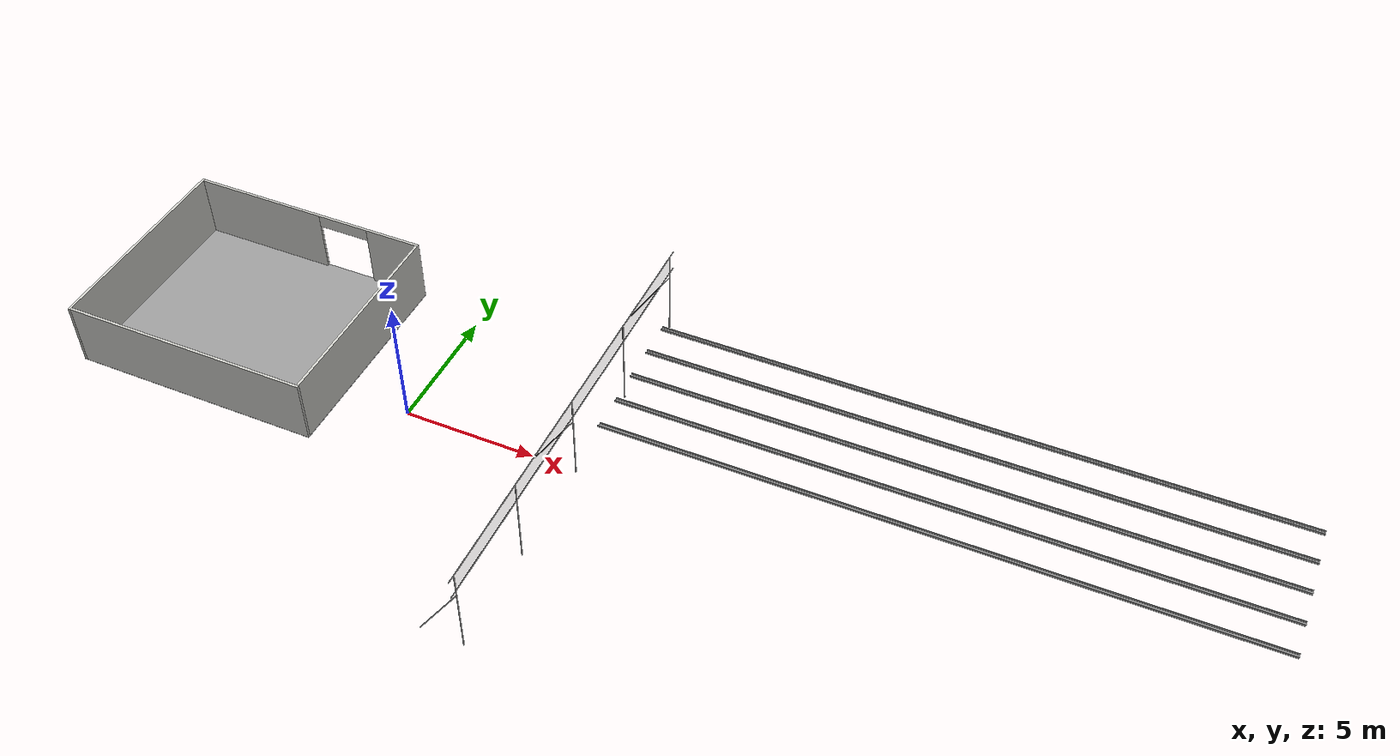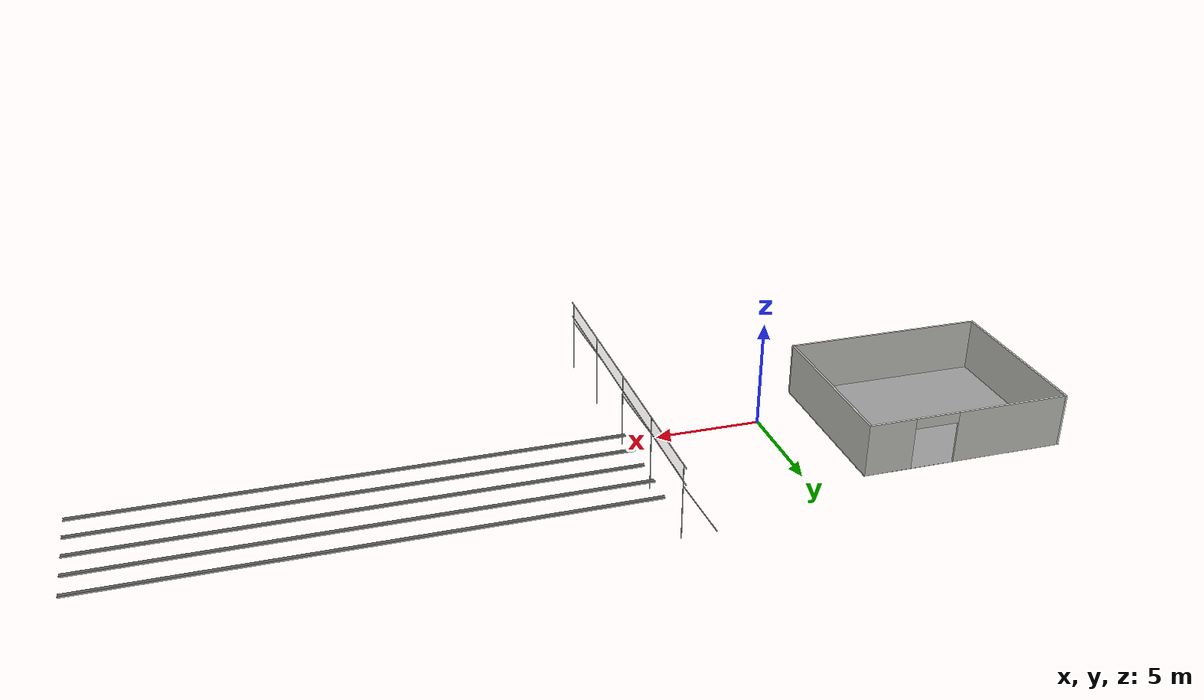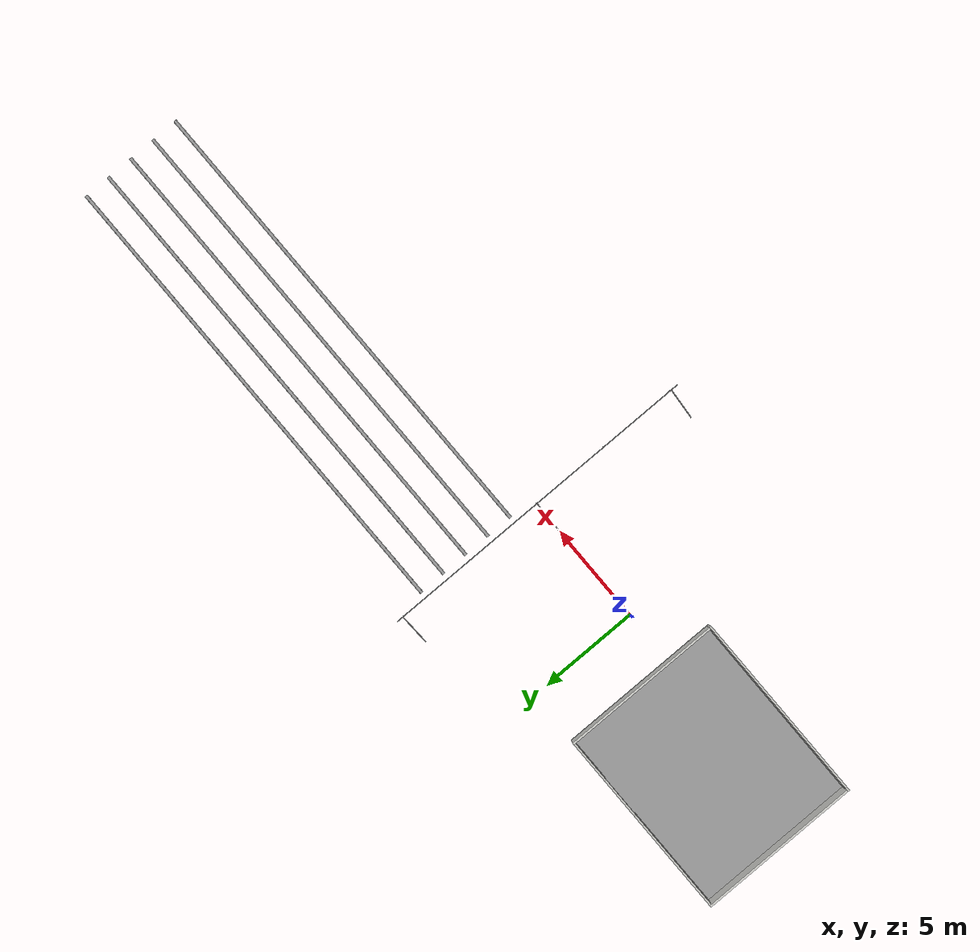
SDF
<sdf version="1.4">
 <world name="default">
  <model name="tray_5">
   <static>1</static>
   <link name="link_0">
    <collision name="collision"><geometry><box><size>23.620 0.15 0.005</size></box></geometry></collision>
    <visual name="visual">
     <geometry><box><size>23.620 0.15 0.005</size></box></geometry>
     <material>
      <script><uri>file://media/materials/scripts/gazebo.material</uri><name>Gazebo/Grey</name></script>
      <emissive>0 0 0 1</emissive>
      <shader type="vertex"><normal_map>__default__</normal_map></shader>
      <specular>0.01 0.01 0.01 1</specular>
      <lighting>1</lighting>
      <ambient>0.7 0.7 0.7 1</ambient>
      <diffuse>0.3 0.3 0.3 1</diffuse>
     </material>
    </visual>
    <pose>18.760 1.320 1.14965 0.0 0.0 0.0</pose>
   </link>
  </model>
  <model name="tray_6">
   <static>1</static>
   <link name="link_0">
    <collision name="collision"><geometry><box><size>23.620 0.15 0.005</size></box></geometry></collision>
    <visual name="visual">
     <geometry><box><size>23.620 0.15 0.005</size></box></geometry>
     <material>
      <script><uri>file://media/materials/scripts/gazebo.material</uri><name>Gazebo/Grey</name></script>
      <emissive>0 0 0 1</emissive>
      <shader type="vertex"><normal_map>__default__</normal_map></shader>
      <specular>0.01 0.01 0.01 1</specular>
      <lighting>1</lighting>
      <ambient>0.7 0.7 0.7 1</ambient>
      <diffuse>0.3 0.3 0.3 1</diffuse>
     </material>
    </visual>
    <pose>18.760 2.640 1.14965 0.0 0.0 0.0</pose>
   </link>
  </model>
  <model name="tray_7">
   <static>1</static>
   <link name="link_0">
    <collision name="collision"><geometry><box><size>23.620 0.15 0.005</size></box></geometry></collision>
    <visual name="visual">
     <geometry><box><size>23.620 0.15 0.005</size></box></geometry>
     <material>
      <script><uri>file://media/materials/scripts/gazebo.material</uri><name>Gazebo/Grey</name></script>
      <emissive>0 0 0 1</emissive>
      <shader type="vertex"><normal_map>__default__</normal_map></shader>
      <specular>0.01 0.01 0.01 1</specular>
      <lighting>1</lighting>
      <ambient>0.7 0.7 0.7 1</ambient>
      <diffuse>0.3 0.3 0.3 1</diffuse>
     </material>
    </visual>
    <pose>18.760 3.960 1.14965 0.0 0.0 0.0</pose>
   </link>
  </model>
  <model name="tray_8">
   <static>1</static>
   <link name="link_0">
    <collision name="collision"><geometry><box><size>23.620 0.15 0.005</size></box></geometry></collision>
    <visual name="visual">
     <geometry><box><size>23.620 0.15 0.005</size></box></geometry>
     <material>
      <script><uri>file://media/materials/scripts/gazebo.material</uri><name>Gazebo/Grey</name></script>
      <emissive>0 0 0 1</emissive>
      <shader type="vertex"><normal_map>__default__</normal_map></shader>
      <specular>0.01 0.01 0.01 1</specular>
      <lighting>1</lighting>
      <ambient>0.7 0.7 0.7 1</ambient>
      <diffuse>0.3 0.3 0.3 1</diffuse>
     </material>
    </visual>
    <pose>18.760 5.280 1.14965 0.0 0.0 0.0</pose>
   </link>
  </model>
  <model name="tray_9">
   <static>1</static>
   <link name="link_0">
    <collision name="collision"><geometry><box><size>23.620 0.15 0.005</size></box></geometry></collision>
    <visual name="visual">
     <geometry><box><size>23.620 0.15 0.005</size></box></geometry>
     <material>
      <script><uri>file://media/materials/scripts/gazebo.material</uri><name>Gazebo/Grey</name></script>
      <emissive>0 0 0 1</emissive>
      <shader type="vertex"><normal_map>__default__</normal_map></shader>
      <specular>0.01 0.01 0.01 1</specular>
      <lighting>1</lighting>
      <ambient>0.7 0.7 0.7 1</ambient>
      <diffuse>0.3 0.3 0.3 1</diffuse>
     </material>
    </visual>
    <pose>18.760 6.600 1.14965 0.0 0.0 0.0</pose>
   </link>
  </model>
  <model name="tray_p2_10">
   <static>1</static>
   <link name="link_0">
    <collision name="collision"><geometry><box><size>23.62 0.085 0.005</size></box></geometry></collision>
    <visual name="visual">
     <geometry><box><size>23.62 0.085 0.005</size></box></geometry>
     <material>
      <script><uri>file://media/materials/scripts/gazebo.material</uri><name>Gazebo/Grey</name></script>
      <emissive>0 0 0 1</emissive>
      <shader type="vertex"><normal_map>__default__</normal_map></shader>
      <specular>0.01 0.01 0.01 1</specular>
      <lighting>1</lighting>
      <ambient>0.7 0.7 0.7 1</ambient>
      <diffuse>0.3 0.3 0.3 1</diffuse>
     </material>
    </visual>
    <pose>18.760 1.245 1.19165 1.5707 0.0 0.0</pose>
   </link>
  </model>
  <model name="tray_p2_11">
   <static>1</static>
   <link name="link_0">
    <collision name="collision"><geometry><box><size>23.62 0.085 0.005</size></box></geometry></collision>
    <visual name="visual">
     <geometry><box><size>23.62 0.085 0.005</size></box></geometry>
     <material>
      <script><uri>file://media/materials/scripts/gazebo.material</uri><name>Gazebo/Grey</name></script>
      <emissive>0 0 0 1</emissive>
      <shader type="vertex"><normal_map>__default__</normal_map></shader>
      <specular>0.01 0.01 0.01 1</specular>
      <lighting>1</lighting>
      <ambient>0.7 0.7 0.7 1</ambient>
      <diffuse>0.3 0.3 0.3 1</diffuse>
     </material>
    </visual>
    <pose>18.760 2.565 1.19165 1.5707 0.0 0.0</pose>
   </link>
  </model>
  <model name="tray_p2_12">
   <static>1</static>
   <link name="link_0">
    <collision name="collision"><geometry><box><size>23.62 0.085 0.005</size></box></geometry></collision>
    <visual name="visual">
     <geometry><box><size>23.62 0.085 0.005</size></box></geometry>
     <material>
      <script><uri>file://media/materials/scripts/gazebo.material</uri><name>Gazebo/Grey</name></script>
      <emissive>0 0 0 1</emissive>
      <shader type="vertex"><normal_map>__default__</normal_map></shader>
      <specular>0.01 0.01 0.01 1</specular>
      <lighting>1</lighting>
      <ambient>0.7 0.7 0.7 1</ambient>
      <diffuse>0.3 0.3 0.3 1</diffuse>
     </material>
    </visual>
    <pose>18.760 3.885 1.19165 1.5707 0.0 0.0</pose>
   </link>
  </model>
  <model name="tray_p2_13">
   <static>1</static>
   <link name="link_0">
    <collision name="collision"><geometry><box><size>23.62 0.085 0.005</size></box></geometry></collision>
    <visual name="visual">
     <geometry><box><size>23.62 0.085 0.005</size></box></geometry>
     <material>
      <script><uri>file://media/materials/scripts/gazebo.material</uri><name>Gazebo/Grey</name></script>
      <emissive>0 0 0 1</emissive>
      <shader type="vertex"><normal_map>__default__</normal_map></shader>
      <specular>0.01 0.01 0.01 1</specular>
      <lighting>1</lighting>
      <ambient>0.7 0.7 0.7 1</ambient>
      <diffuse>0.3 0.3 0.3 1</diffuse>
     </material>
    </visual>
    <pose>18.760 5.205 1.19165 1.5707 0.0 0.0</pose>
   </link>
  </model>
  <model name="tray_p2_14">
   <static>1</static>
   <link name="link_0">
    <collision name="collision"><geometry><box><size>23.62 0.085 0.005</size></box></geometry></collision>
    <visual name="visual">
     <geometry><box><size>23.62 0.085 0.005</size></box></geometry>
     <material>
      <script><uri>file://media/materials/scripts/gazebo.material</uri><name>Gazebo/Grey</name></script>
      <emissive>0 0 0 1</emissive>
      <shader type="vertex"><normal_map>__default__</normal_map></shader>
      <specular>0.01 0.01 0.01 1</specular>
      <lighting>1</lighting>
      <ambient>0.7 0.7 0.7 1</ambient>
      <diffuse>0.3 0.3 0.3 1</diffuse>
     </material>
    </visual>
    <pose>18.760 6.525 1.19165 1.5707 0.0 0.0</pose>
   </link>
  </model>
  <model name="tray_p2_15">
   <static>1</static>
   <link name="link_0">
    <collision name="collision"><geometry><box><size>23.62 0.085 0.005</size></box></geometry></collision>
    <visual name="visual">
     <geometry><box><size>23.62 0.085 0.005</size></box></geometry>
     <material>
      <script><uri>file://media/materials/scripts/gazebo.material</uri><name>Gazebo/Grey</name></script>
      <emissive>0 0 0 1</emissive>
      <shader type="vertex"><normal_map>__default__</normal_map></shader>
      <specular>0.01 0.01 0.01 1</specular>
      <lighting>1</lighting>
      <ambient>0.7 0.7 0.7 1</ambient>
      <diffuse>0.3 0.3 0.3 1</diffuse>
     </material>
    </visual>
    <pose>18.760 1.395 1.19165 1.5707 0.0 0.0</pose>
   </link>
  </model>
  <model name="tray_p2_16">
   <static>1</static>
   <link name="link_0">
    <collision name="collision"><geometry><box><size>23.62 0.085 0.005</size></box></geometry></collision>
    <visual name="visual">
     <geometry><box><size>23.62 0.085 0.005</size></box></geometry>
     <material>
      <script><uri>file://media/materials/scripts/gazebo.material</uri><name>Gazebo/Grey</name></script>
      <emissive>0 0 0 1</emissive>
      <shader type="vertex"><normal_map>__default__</normal_map></shader>
      <specular>0.01 0.01 0.01 1</specular>
      <lighting>1</lighting>
      <ambient>0.7 0.7 0.7 1</ambient>
      <diffuse>0.3 0.3 0.3 1</diffuse>
     </material>
    </visual>
    <pose>18.760 2.715 1.19165 1.5707 0.0 0.0</pose>
   </link>
  </model>
  <model name="tray_p2_17">
   <static>1</static>
   <link name="link_0">
    <collision name="collision"><geometry><box><size>23.62 0.085 0.005</size></box></geometry></collision>
    <visual name="visual">
     <geometry><box><size>23.62 0.085 0.005</size></box></geometry>
     <material>
      <script><uri>file://media/materials/scripts/gazebo.material</uri><name>Gazebo/Grey</name></script>
      <emissive>0 0 0 1</emissive>
      <shader type="vertex"><normal_map>__default__</normal_map></shader>
      <specular>0.01 0.01 0.01 1</specular>
      <lighting>1</lighting>
      <ambient>0.7 0.7 0.7 1</ambient>
      <diffuse>0.3 0.3 0.3 1</diffuse>
     </material>
    </visual>
    <pose>18.760 4.035 1.19165 1.5707 0.0 0.0</pose>
   </link>
  </model>
  <model name="tray_p2_18">
   <static>1</static>
   <link name="link_0">
    <collision name="collision"><geometry><box><size>23.62 0.085 0.005</size></box></geometry></collision>
    <visual name="visual">
     <geometry><box><size>23.62 0.085 0.005</size></box></geometry>
     <material>
      <script><uri>file://media/materials/scripts/gazebo.material</uri><name>Gazebo/Grey</name></script>
      <emissive>0 0 0 1</emissive>
      <shader type="vertex"><normal_map>__default__</normal_map></shader>
      <specular>0.01 0.01 0.01 1</specular>
      <lighting>1</lighting>
      <ambient>0.7 0.7 0.7 1</ambient>
      <diffuse>0.3 0.3 0.3 1</diffuse>
     </material>
    </visual>
    <pose>18.760 5.355 1.19165 1.5707 0.0 0.0</pose>
   </link>
  </model>
  <model name="tray_p2_19">
   <static>1</static>
   <link name="link_0">
    <collision name="collision"><geometry><box><size>23.62 0.085 0.005</size></box></geometry></collision>
    <visual name="visual">
     <geometry><box><size>23.62 0.085 0.005</size></box></geometry>
     <material>
      <script><uri>file://media/materials/scripts/gazebo.material</uri><name>Gazebo/Grey</name></script>
      <emissive>0 0 0 1</emissive>
      <shader type="vertex"><normal_map>__default__</normal_map></shader>
      <specular>0.01 0.01 0.01 1</specular>
      <lighting>1</lighting>
      <ambient>0.7 0.7 0.7 1</ambient>
      <diffuse>0.3 0.3 0.3 1</diffuse>
     </material>
    </visual>
    <pose>18.760 6.675 1.19165 1.5707 0.0 0.0</pose>
   </link>
  </model>
  <model name="frontage_0">
   <static>1</static>
   <link name="link_1">
    <collision name="collision">
     <geometry><cylinder><length>3.5</length><radius>0.02</radius></cylinder></geometry>
    </collision>
    <visual name="visual">
     <geometry><cylinder><length>3.5</length><radius>0.02</radius></cylinder></geometry>
     <material>
      <script><uri>file://media/materials/scripts/gazebo.material</uri><name>Gazebo/Chrome</name></script>
      <shader type="vertex"><normal_map>__default__</normal_map></shader>
      <emissive>0.1 0.1 0.1 1</emissive>
      <specular>0.01 0.01 0.01 1</specular>
      <ambient>0.5 0.5 0.5 1</ambient>
      <diffuse>0.05 0.05 0.05 1</diffuse>
     </material>
    </visual>
    <pose>6.68 -7.94 1.7 0.0 0.0 0.0</pose>
   </link>
   <link name="link_2">
    <collision name="collision">
     <geometry><cylinder><length>3.5</length><radius>0.02</radius></cylinder></geometry>
    </collision>
    <visual name="visual">
     <geometry><cylinder><length>3.5</length><radius>0.02</radius></cylinder></geometry>
     <material>
      <script><uri>file://media/materials/scripts/gazebo.material</uri><name>Gazebo/Chrome</name></script>
      <shader type="vertex"><normal_map>__default__</normal_map></shader>
      <emissive>0.1 0.1 0.1 1</emissive>
      <specular>0.01 0.01 0.01 1</specular>
      <ambient>0.5 0.5 0.5 1</ambient>
      <diffuse>0.05 0.05 0.05 1</diffuse>
     </material>
    </visual>
    <pose>6.68 0 1.7 0.0 0.0 0.0</pose>
   </link>
   <link name="link_3">
    <collision name="collision">
     <geometry><cylinder><length>3.5</length><radius>0.02</radius></cylinder></geometry>
    </collision>
    <visual name="visual">
     <geometry><cylinder><length>3.5</length><radius>0.02</radius></cylinder></geometry>
     <material>
      <script><uri>file://media/materials/scripts/gazebo.material</uri><name>Gazebo/Chrome</name></script>
      <shader type="vertex"><normal_map>__default__</normal_map></shader>
      <emissive>0.1 0.1 0.1 1</emissive>
      <specular>0.01 0.01 0.01 1</specular>
      <ambient>0.5 0.5 0.5 1</ambient>
      <diffuse>0.05 0.05 0.05 1</diffuse>
     </material>
    </visual>
    <pose>6.68 7.93 1.7 0.0 0.0 0.0</pose>
   </link>
   <link name="link_10">
    <collision name="collision">
     <geometry><cylinder><length>3.5</length><radius>0.02</radius></cylinder></geometry>
    </collision>
    <visual name="visual">
     <geometry><cylinder><length>3.5</length><radius>0.02</radius></cylinder></geometry>
     <material>
      <script><uri>file://media/materials/scripts/gazebo.material</uri><name>Gazebo/Chrome</name></script>
      <shader type="vertex"><normal_map>__default__</normal_map></shader>
      <emissive>0.1 0.1 0.1 1</emissive>
      <specular>0.01 0.01 0.01 1</specular>
      <ambient>0.5 0.5 0.5 1</ambient>
      <diffuse>0.05 0.05 0.05 1</diffuse>
     </material>
    </visual>
    <pose>6.68 -4 1.7 0.0 0.0 0.0</pose>
   </link>
   <link name="link_11">
    <collision name="collision">
     <geometry><cylinder><length>3.5</length><radius>0.02</radius></cylinder></geometry>
    </collision>
    <visual name="visual">
     <geometry><cylinder><length>3.5</length><radius>0.02</radius></cylinder></geometry>
     <material>
      <script><uri>file://media/materials/scripts/gazebo.material</uri><name>Gazebo/Chrome</name></script>
      <shader type="vertex"><normal_map>__default__</normal_map></shader>
      <emissive>0.1 0.1 0.1 1</emissive>
      <specular>0.01 0.01 0.01 1</specular>
      <ambient>0.5 0.5 0.5 1</ambient>
      <diffuse>0.05 0.05 0.05 1</diffuse>
     </material>
    </visual>
    <pose>6.68 3.96 1.7 0.0 0.0 0.0</pose>
   </link>
   <link name="link_4">
    <collision name="collision">
     <geometry><cylinder><length>16.5</length><radius>0.02</radius></cylinder></geometry>
    </collision>
    <visual name="visual">
     <geometry><cylinder><length>16.5</length><radius>0.02</radius></cylinder></geometry>
     <material>
      <script><uri>file://media/materials/scripts/gazebo.material</uri><name>Gazebo/Chrome</name></script>
      <shader type="vertex"><normal_map>__default__</normal_map></shader>
      <emissive>0.1 0.1 0.1 1</emissive>
      <specular>0.01 0.01 0.01 1</specular>
      <ambient>0.5 0.5 0.5 1</ambient>
      <diffuse>0.05 0.05 0.05 1</diffuse>
     </material>
    </visual>
    <pose>6.68 0 2.7 1.5707 0.0 0.0</pose>
   </link>
   <link name="link_5">
    <collision name="collision">
     <geometry><cylinder><length>16.5</length><radius>0.02</radius></cylinder></geometry>
    </collision>
    <visual name="visual">
     <geometry><cylinder><length>16.5</length><radius>0.02</radius></cylinder></geometry>
     <material>
      <script><uri>file://media/materials/scripts/gazebo.material</uri><name>Gazebo/Chrome</name></script>
      <shader type="vertex"><normal_map>__default__</normal_map></shader>
      <emissive>0.1 0.1 0.1 1</emissive>
      <specular>0.01 0.01 0.01 1</specular>
      <ambient>0.5 0.5 0.5 1</ambient>
      <diffuse>0.05 0.05 0.05 1</diffuse>
     </material>
    </visual>
    <pose>6.68 0 3.45 1.5707 0.0 0.0</pose>
   </link>
   <link name="link_6">
    <collision name="collision">
     <geometry><cylinder><length>2.93</length><radius>0.02</radius></cylinder></geometry>
    </collision>
    <visual name="visual">
     <geometry><cylinder><length>2.93</length><radius>0.02</radius></cylinder></geometry>
     <material>
      <script><uri>file://media/materials/scripts/gazebo.material</uri><name>Gazebo/Chrome</name></script>
      <shader type="vertex"><normal_map>__default__</normal_map></shader>
      <emissive>0.1 0.1 0.1 1</emissive>
      <specular>0.01 0.01 0.01 1</specular>
      <ambient>0.5 0.5 0.5 1</ambient>
      <diffuse>0.05 0.05 0.05 1</diffuse>
     </material>
    </visual>
    <pose>5.89 -7.94 1.225 0 0.565 0.0</pose>
   </link>
   <link name="link_7">
    <collision name="collision">
     <geometry><cylinder><length>2.93</length><radius>0.02</radius></cylinder></geometry>
    </collision>
    <visual name="visual">
     <geometry><cylinder><length>2.93</length><radius>0.02</radius></cylinder></geometry>
     <material>
      <script><uri>file://media/materials/scripts/gazebo.material</uri><name>Gazebo/Chrome</name></script>
      <shader type="vertex"><normal_map>__default__</normal_map></shader>
      <emissive>0.1 0.1 0.1 1</emissive>
      <specular>0.01 0.01 0.01 1</specular>
      <ambient>0.5 0.5 0.5 1</ambient>
      <diffuse>0.05 0.05 0.05 1</diffuse>
     </material>
    </visual>
    <pose>5.89 0 1.225 0 0.565 0.0</pose>
   </link>
   <link name="link_8">
    <collision name="collision">
     <geometry><cylinder><length>2.93</length><radius>0.02</radius></cylinder></geometry>
    </collision>
    <visual name="visual">
     <geometry><cylinder><length>2.93</length><radius>0.02</radius></cylinder></geometry>
     <material>
      <script><uri>file://media/materials/scripts/gazebo.material</uri><name>Gazebo/Chrome</name></script>
      <shader type="vertex"><normal_map>__default__</normal_map></shader>
      <emissive>0.1 0.1 0.1 1</emissive>
      <specular>0.01 0.01 0.01 1</specular>
      <ambient>0.5 0.5 0.5 1</ambient>
      <diffuse>0.05 0.05 0.05 1</diffuse>
     </material>
    </visual>
    <pose>5.89 7.93 1.225 0 0.565 0.0</pose>
   </link>
   <link name="link_9">
    <collision name="collision"><geometry><box><size>0.002 15.87 0.75</size></box></geometry></collision>
    <visual name="visual">
     <geometry><box><size>0.002 15.87 0.75</size></box></geometry>
     <material>
      <emissive>1 1 1 1</emissive>
      <shader type="vertex"><normal_map>__default__</normal_map></shader>
      <specular>1 1 1 1</specular>
      <lighting>1</lighting>
      <ambient>1 1 1 1</ambient>
      <diffuse>1 1 1 1</diffuse>
     </material>
     <transparency>0.65</transparency>
    </visual>
    <pose>6.68 0 3.075 0 0 0</pose>
   </link>
  </model>
  <model name="food_handling_shed_0">
   <static>1</static>
   <pose>-7.470 1.670 0.0 0.0 0.0 3.141</pose>
   <link name="Wall_5">
    <collision name="Wall_5_Collision">
     <geometry><box><size>9.70037 0.1 2.5</size></box></geometry>
     <pose>0 0 1.25 0 -0 0</pose>
    </collision>
    <visual name="Wall_5_Visual">
     <geometry><box><size>9.70037 0.1 2.5</size></box></geometry>
     <meta><layer>0</layer></meta>
     <material>
      <script><uri>file://media/materials/scripts/gazebo.material</uri><name>Gazebo/CeilingTiled</name></script>
      <ambient>1 1 1 1</ambient>
     </material>
     <pose>0 0 1.25 0 -0 0</pose>
    </visual>
    <pose>-0 4.05 0 0 -0 0</pose>
   </link>
   <link name="Wall_6">
    <collision name="Wall_6_Collision">
     <geometry><box><size>8.20047 0.1 2.5</size></box></geometry>
     <pose>0 0 1.25 0 -0 0</pose>
    </collision>
    <visual name="Wall_6_Visual">
     <geometry><box><size>8.20047 0.1 2.5</size></box></geometry>
     <meta><layer>0</layer></meta>
     <material>
      <script><uri>file://media/materials/scripts/gazebo.material</uri><name>Gazebo/CeilingTiled</name></script>
      <ambient>1 1 1 1</ambient>
     </material>
     <pose>0 0 1.25 0 -0 0</pose>
    </visual>
    <pose>4.8 -0 0 0 -0 -1.5708</pose>
   </link>
   <link name="Wall_7">
    <collision name="Wall_7_Collision_0">
     <geometry><box><size>5.3757 0.1 2.5</size></box></geometry>
     <pose>-2.16197 0 1.25 0 -0 0</pose>
    </collision>
    <collision name="Wall_7_Collision_1">
     <geometry><box><size>2.23943 0.1 2.5</size></box></geometry>
     <pose>3.7301 0 1.25 0 -0 0</pose>
    </collision>
    <collision name="Wall_7_Collision_2">
     <geometry><box><size>2.0845 0.1 0.5</size></box></geometry>
     <pose>1.56813 0 2.25 0 -0 0</pose>
    </collision>
    <visual name="Wall_7_Visual_0">
     <geometry><box><size>5.3757 0.1 2.5</size></box></geometry>
     <meta><layer>0</layer></meta>
     <material>
      <script><uri>file://media/materials/scripts/gazebo.material</uri><name>Gazebo/CeilingTiled</name></script>
      <ambient>1 1 1 1</ambient>
     </material>
     <pose>-2.16197 0 1.25 0 -0 0</pose>
    </visual>
    <visual name="Wall_7_Visual_1">
     <geometry><box><size>2.23943 0.1 2.5</size></box></geometry>
     <meta><layer>0</layer></meta>
     <material>
      <script><uri>file://media/materials/scripts/gazebo.material</uri><name>Gazebo/CeilingTiled</name></script>
      <ambient>1 1 1 1</ambient>
     </material>
     <pose>3.7301 0 1.25 0 -0 0</pose>
    </visual>
    <visual name="Wall_7_Visual_2">
     <geometry><box><size>2.0845 0.1 0.5</size></box></geometry>
     <meta><layer>0</layer></meta>
     <material>
      <script><uri>file://media/materials/scripts/gazebo.material</uri><name>Gazebo/CeilingTiled</name></script>
      <ambient>1 1 1 1</ambient>
     </material>
     <pose>1.56813 0 2.25 0 -0 0</pose>
    </visual>
    <pose>-0 -4.05 0 0 -0 3.14159</pose>
   </link>
   <link name="Wall_8">
    <collision name="Wall_8_Collision">
     <geometry><box><size>8.19953 0.1 2.5</size></box></geometry>
     <pose>0 0 1.25 0 -0 0</pose>
    </collision>
    <visual name="Wall_8_Visual">
     <geometry><box><size>8.19953 0.1 2.5</size></box></geometry>
     <meta><layer>0</layer></meta>
     <material>
      <script><uri>file://media/materials/scripts/gazebo.material</uri><name>Gazebo/CeilingTiled</name></script>
      <ambient>1 1 1 1</ambient>
     </material>
     <pose>0 0 1.25 0 -0 0</pose>
    </visual>
    <pose>-4.8 -0 0 0 -0 1.5708</pose>
   </link>
  </model>
  <model name="fhs_floor_0">
   <static>1</static>
   <link name="link_0">
    <collision name="collision"><geometry><box><size>9.75 8.2 0.001</size></box></geometry></collision>
    <visual name="visual">
     <geometry><box><size>9.75 8.2 0.01</size></box></geometry>
     <material>
      <script><uri>file://media/materials/scripts/gazebo.material</uri><name>Gazebo/Grey</name></script>
      <emissive>0 0 0 1</emissive>
      <shader type="vertex"><normal_map>__default__</normal_map></shader>
      <specular>0.01 0.01 0.01 1</specular>
      <lighting>1</lighting>
      <ambient>0.3 0.3 0.3 1</ambient>
      <diffuse>0.7 0.7 0.7 1</diffuse>
     </material>
    </visual>
    <pose>-7.470 1.670 -0.001 0.0 0.0 3.141</pose>
   </link>
  </model>
  <include><uri>model://sun</uri></include>
 </world>
</sdf>
